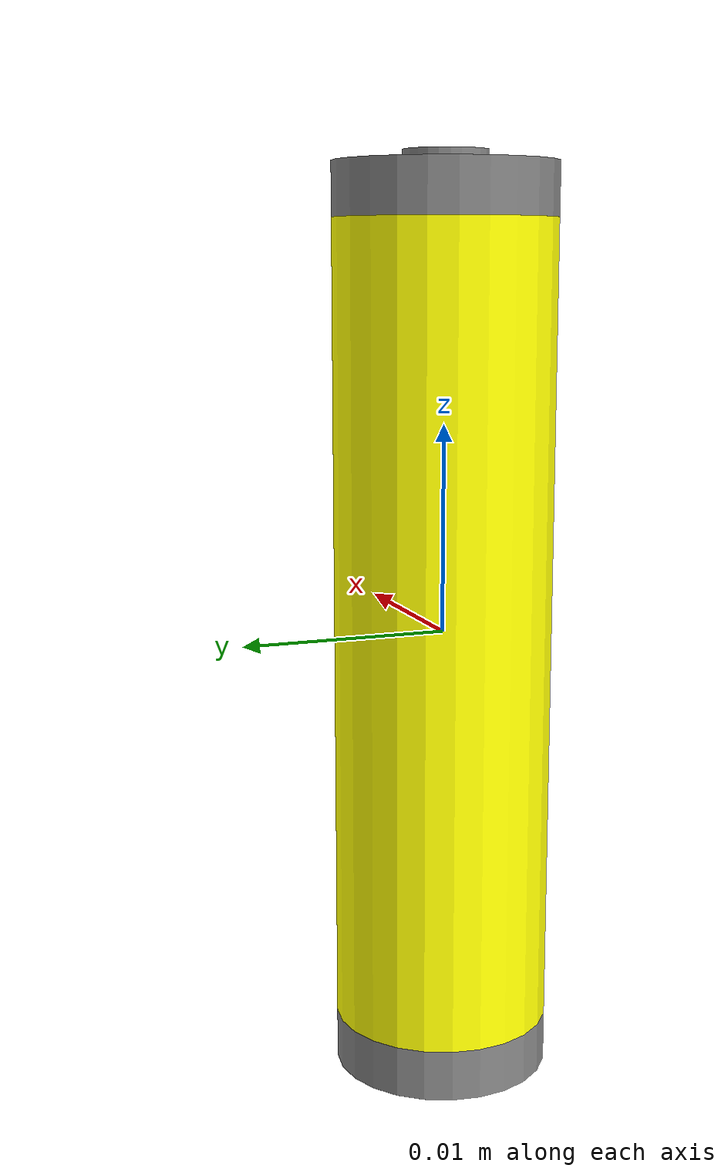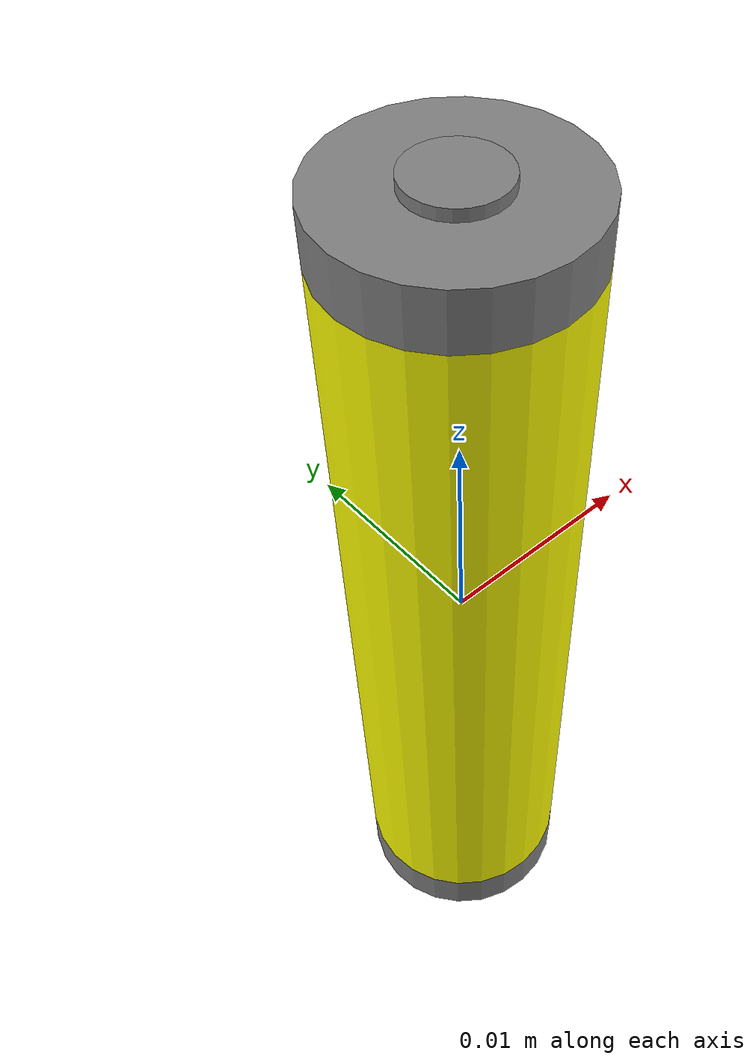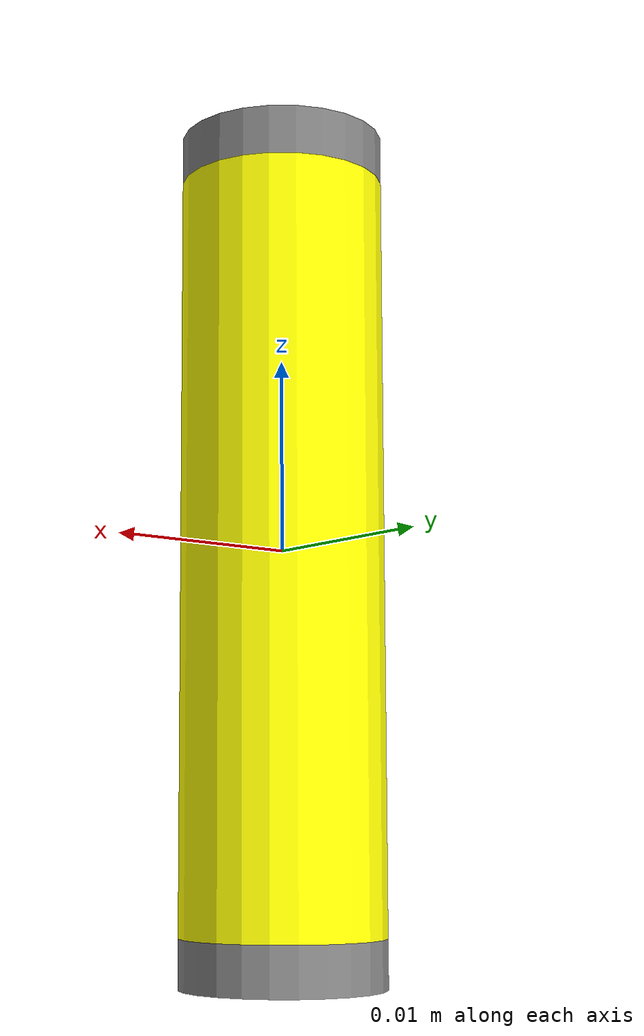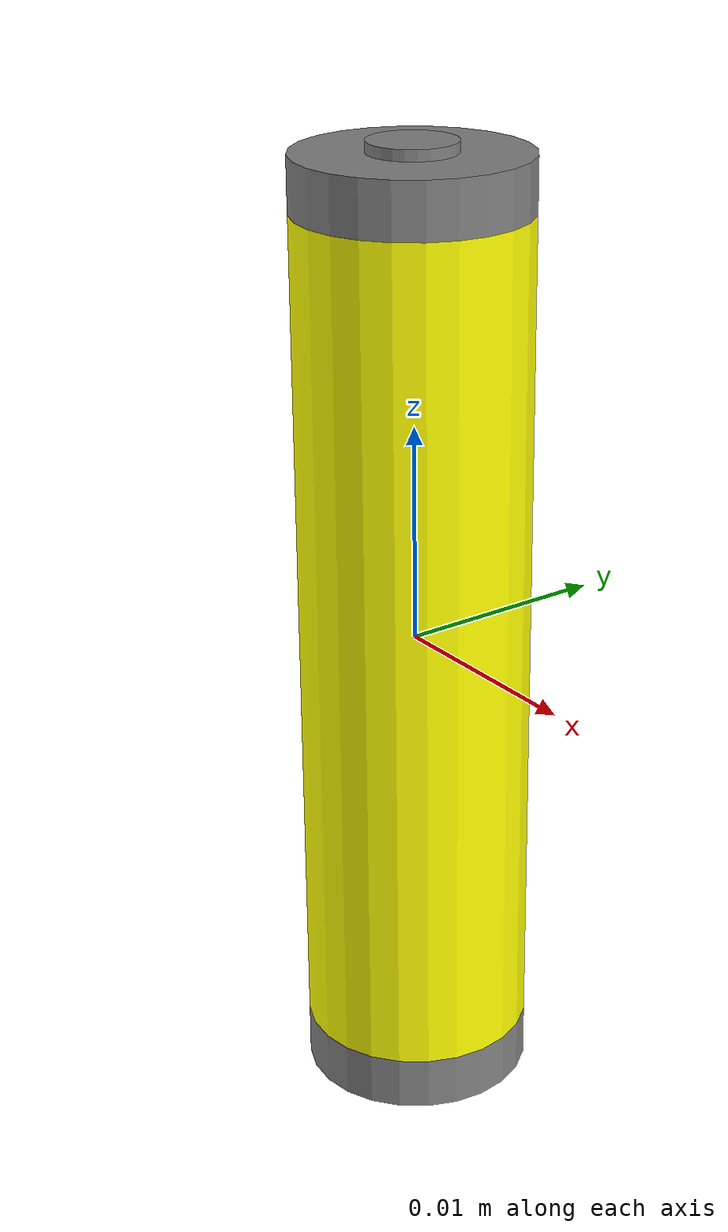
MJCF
<mujoco model="battery_AAA">

    <worldbody>
        <body name="battery_AAA" pos="0 0 0">
            <!-- Main green body with texture -->
            <geom name="battery_body" type="cylinder" pos="0 0 0" size="0.00525 0.0195"
                rgba="1 1 0 1" mass="0.012" friction="1 0.8 0.6" condim="4"/>

            <!-- Bottom grey cap -->
            <geom name="battery_bottom_cap" type="cylinder" pos="0 0 -0.02075" size="0.00525 0.00125"
                  rgba="0.5 0.5 0.5 1" mass="0.002" friction="1 0.8 0.6" condim="4"/>

            <!-- Top grey cap -->
            <geom name="battery_top_cap" type="cylinder" pos="0 0 0.02075" size="0.00525 0.00125"
                  rgba="0.5 0.5 0.5 1" mass="0.002" friction="1 0.8 0.6" condim="4"/>

            <!-- Positive bump on top -->
            <geom name="battery_positive_bump" type="cylinder" pos="0 0 0.02225" size="0.002 0.00025"
                  rgba="0.5 0.5 0.5 1" mass="0.0005" friction="1 0.8 0.6" condim="4"/>

        </body>
    </worldbody>
</mujoco>
